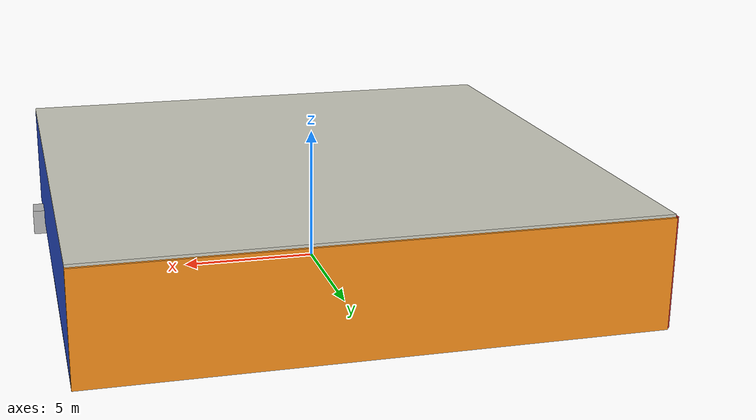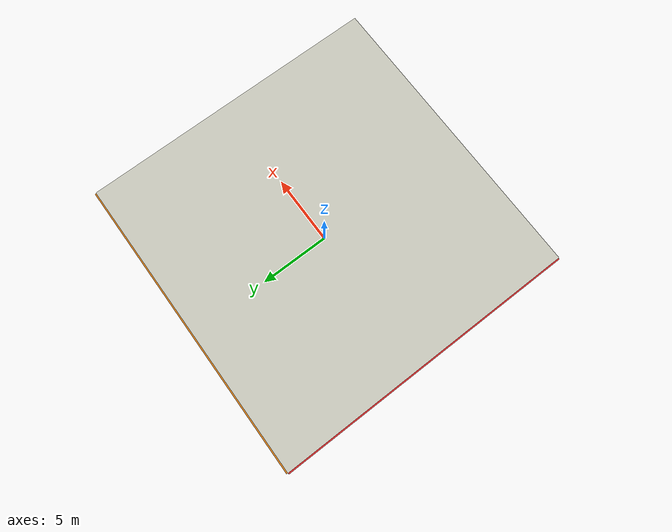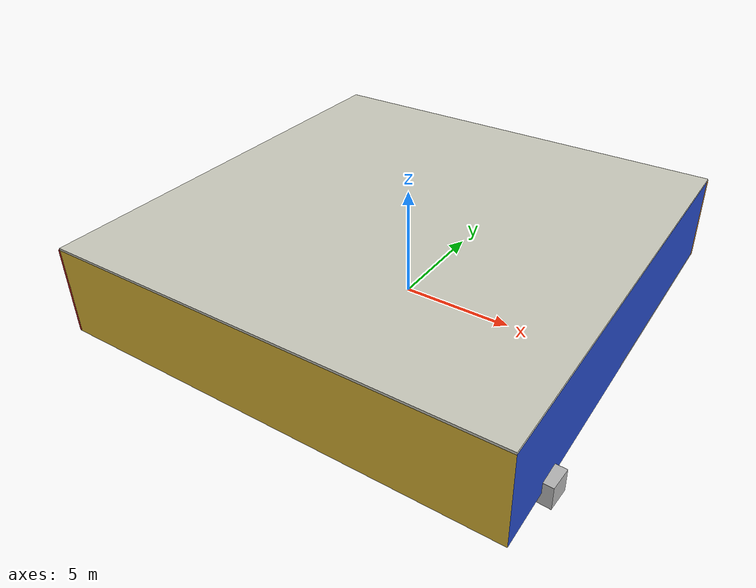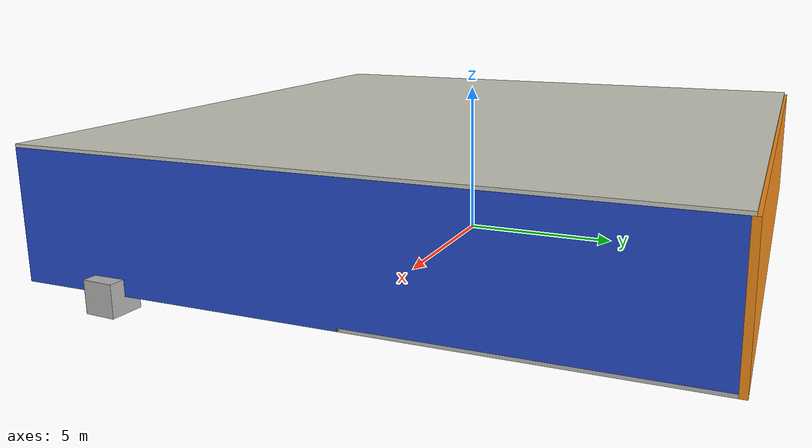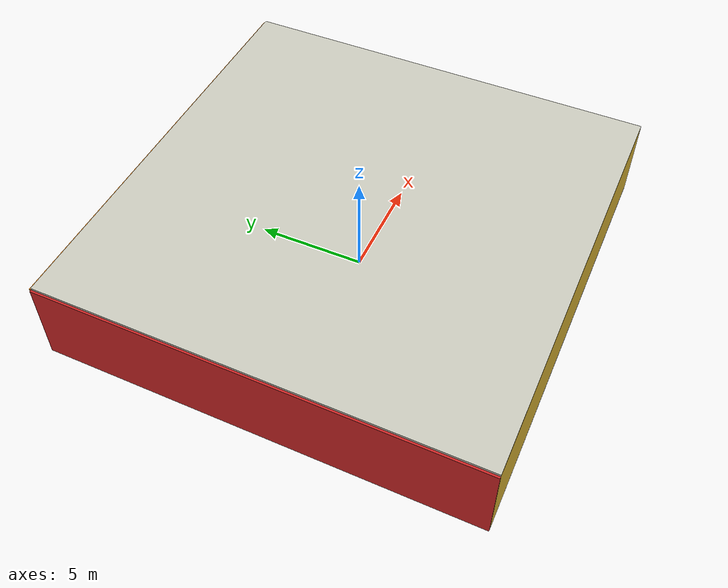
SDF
<sdf version="1.4">
 <world name="default">
  <physics type="ode">
   <max_step_size>0.001</max_step_size>
   <real_time_factor>1</real_time_factor>
   <real_time_update_rate>1000</real_time_update_rate>
   <gravity>0 0 -9.8</gravity>
  </physics>
  <scene><ambient>0.4 0.4 0.4 1</ambient><background>0.7 0.7 0.7 1</background><shadows>1</shadows></scene>
  <model name="Surrounding">
   <static>1</static>
   <link name="Ceiling">
    <collision name="Ceiling_Collision"><geometry><box><size>20 20 0.1</size></box></geometry></collision>
    <visual name="Ceiling_Visual">
     <geometry><box><size>20 20 0.1</size></box></geometry>
     <material>
      <script><uri>file://media/materials/scripts/gazebo.material</uri><name>Gazebo/PaintedWall</name></script>
     </material>
    </visual>
    <pose>0 0 4.05 0 0 0</pose>
   </link>
   <link name="Wall_South">
    <collision name="Wall_South_Collision">
     <geometry><box><size>20 0 4</size></box></geometry>
     <pose>0 0 2 0 -0 0</pose>
    </collision>
    <visual name="Wall_South_Visual">
     <pose>0 0 2 0 -0 0</pose>
     <geometry><box><size>20 0 4</size></box></geometry>
     <material>
      <script><uri>file://media/materials/scripts/gazebo.material</uri><name>Gazebo/Gold</name></script>
     </material>
    </visual>
    <velocity_decay><linear>0</linear><angular>0</angular></velocity_decay>
    <pose>0 -10 0 0 -0 0</pose>
   </link>
   <link name="Wall_East">
    <collision name="Wall_21_Collision">
     <geometry><box><size>20 0 4</size></box></geometry>
     <pose>0 0 2 0 -0 0</pose>
    </collision>
    <visual name="Wall_21_Visual">
     <pose>0 0 2 0 -0 0</pose>
     <geometry><box><size>20 0 4</size></box></geometry>
     <material>
      <script><uri>file://media/materials/scripts/gazebo.material</uri><name>Gazebo/BlueGlow</name></script>
     </material>
    </visual>
    <velocity_decay><linear>0</linear><angular>0</angular></velocity_decay>
    <pose>10 0 0 0 -0 1.5708</pose>
   </link>
   <link name="Wall_North">
    <collision name="Wall_22_Collision">
     <geometry><box><size>20 0.2 4</size></box></geometry>
     <pose>0 0 2 0 -0 0</pose>
    </collision>
    <visual name="Wall_22_Visual">
     <pose>0 0 2 0 -0 0</pose>
     <geometry><box><size>20 0.2 4</size></box></geometry>
     <material>
      <script><uri>file://media/materials/scripts/gazebo.material</uri><name>Gazebo/Orange</name></script>
     </material>
    </visual>
    <velocity_decay><linear>0</linear><angular>0</angular></velocity_decay>
    <pose>0 10 0 0 -0 0</pose>
   </link>
   <link name="Wall_West">
    <collision name="Wall_23_Collision">
     <geometry><box><size>20 0.2 4</size></box></geometry>
     <pose>0 0 2 0 -0 0</pose>
    </collision>
    <visual name="Wall_23_Visual">
     <pose>0 0 2 0 -0 0</pose>
     <geometry><box><size>20 0.2 4</size></box></geometry>
     <material>
      <script><uri>file://media/materials/scripts/gazebo.material</uri><name>Gazebo/RedGlow</name></script>
     </material>
    </visual>
    <velocity_decay><linear>0</linear><angular>0</angular></velocity_decay>
    <pose>-10 0 0 0 0 -1.5708</pose>
   </link>
   <link name="Ground_link">
    <collision name="collision">
     <pose>0 0 .05 0 -0 0</pose>
     <geometry><box><size>20 20 0.1</size></box></geometry>
    </collision>
    <visual name="visual">
     <pose>0 0 .05 0 -0 0</pose>
     <geometry><box><size>20 20 0.1</size></box></geometry>
     <material>
      <script><uri>file://media/materials/scripts/gazebo.material</uri><name>Gazebo/JointAnchor</name></script>
     </material>
    </visual>
   </link>
   <static>1</static>
  </model>
  <spherical_coordinates>
   <surface_model>EARTH_WGS84</surface_model>
   <latitude_deg>0</latitude_deg>
   <longitude_deg>0</longitude_deg>
   <elevation>0</elevation>
   <heading_deg>0</heading_deg>
  </spherical_coordinates>
  <light name="lightball_0" type="diffuse">
   <diffuse>0.8 0.8 0.8 1</diffuse>
   <specular>0.2 0.2 0.2 1</specular>
   <attenuation>
    <range>100</range>
    <constant>0.7</constant>
    <linear>0.01</linear>
    <quadratic>0.001</quadratic>
   </attenuation>
   <direction>-0.5 0.1 -0.9</direction>
   <pose>1.03348430954 2.78523410256 1.39895100223 0 0 0</pose>
  </light>
  <light name="lightball_1" type="diffuse">
   <diffuse>0.8 0.8 0.8 1</diffuse>
   <specular>0.2 0.2 0.2 1</specular>
   <attenuation>
    <range>100</range>
    <constant>0.7</constant>
    <linear>0.01</linear>
    <quadratic>0.001</quadratic>
   </attenuation>
   <direction>-0.5 0.1 -0.9</direction>
   <pose>7.70993389005 -3.16326727703 2.1457099186 0 0 0</pose>
  </light>
  <light name="lightball_2" type="diffuse">
   <diffuse>0.8 0.8 0.8 1</diffuse>
   <specular>0.2 0.2 0.2 1</specular>
   <attenuation>
    <range>100</range>
    <constant>0.7</constant>
    <linear>0.01</linear>
    <quadratic>0.001</quadratic>
   </attenuation>
   <direction>-0.5 0.1 -0.9</direction>
   <pose>-8.47281842659 3.39139171376 1.51563473071 0 0 0</pose>
  </light>
  <light name="lightball_3" type="diffuse">
   <diffuse>0.8 0.8 0.8 1</diffuse>
   <specular>0.2 0.2 0.2 1</specular>
   <attenuation>
    <range>100</range>
    <constant>0.7</constant>
    <linear>0.01</linear>
    <quadratic>0.001</quadratic>
   </attenuation>
   <direction>-0.5 0.1 -0.9</direction>
   <pose>0.771644353054 -1.84809990989 2.29668446586 0 0 0</pose>
  </light>
  <light name="lightball_4" type="diffuse">
   <diffuse>0.8 0.8 0.8 1</diffuse>
   <specular>0.2 0.2 0.2 1</specular>
   <attenuation>
    <range>100</range>
    <constant>0.7</constant>
    <linear>0.01</linear>
    <quadratic>0.001</quadratic>
   </attenuation>
   <direction>-0.5 0.1 -0.9</direction>
   <pose>-3.76448205719 3.72162358256 3.2260862828 0 0 0</pose>
  </light>
  <light name="lightball_5" type="diffuse">
   <diffuse>0.8 0.8 0.8 1</diffuse>
   <specular>0.2 0.2 0.2 1</specular>
   <attenuation>
    <range>100</range>
    <constant>0.7</constant>
    <linear>0.01</linear>
    <quadratic>0.001</quadratic>
   </attenuation>
   <direction>-0.5 0.1 -0.9</direction>
   <pose>-8.48741890342 8.5370961881 3.68720898653 0 0 0</pose>
  </light>
  <include>
   <uri>model://construction_cone</uri>
   <pose>-8.12826276114 5.05698080286 0 0 0 2.48770470903</pose>
  </include>
  <include><uri>model://cabinet</uri><pose>-5.4448426415 -4.8511756835 0 0 0 1.70292517314</pose></include>
  <include><uri>model://cabinet</uri><pose>-1.50264456305 3.73791171316 0 0 0 0.725541555953</pose></include>
  <include><uri>model://cabinet</uri><pose>0.614558357283 -3.85129879829 0 0 0 1.3819626111</pose></include>
  <include><uri>model://cabinet</uri><pose>3.39687502175 -3.37223822941 0 0 0 0.911702672651</pose></include>
  <include>
   <uri>model://textured_shapes</uri>
   <pose>5.35018346146 -2.17470407986 0 0 0 2.49235773065</pose>
  </include>
  <include>
   <uri>model://textured_shapes</uri>
   <pose>8.44575131708 -6.9287620518 0 0 0 1.51492885906</pose>
  </include>
 </world>
</sdf>

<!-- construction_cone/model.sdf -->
<sdf version="1.5">
  <model name="Construction Cone">
    <link name="link">
      <collision name="collision">
        <geometry>
          <mesh>
            <scale>10 10 10</scale>
            <uri>file://isr-testbed/construction_cone/meshes/construction_cone.dae</uri>
          </mesh>
        </geometry>
      </collision>
      <visual name="visual">
        <geometry>
          <mesh>
            <scale>10 10 10</scale>
            <uri>file://isr-testbed/construction_cone/meshes/construction_cone.dae</uri>
          </mesh>
        </geometry>
      </visual>
    </link>
  </model>
</sdf>

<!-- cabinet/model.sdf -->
<sdf version="1.5">
  <model name="cabinet">
    <static>true</static>
    <link name="cabinet_bottom_plate">
      <inertial>
        <pose>0 0 -1 0 0 0</pose>
        <inertia>
          <ixx>2.050000</ixx>
          <ixy>0</ixy>
          <ixz>0</ixz>
          <iyy>2.050000</iyy>
          <iyz>0</iyz>
          <izz>2.050000</izz>
        </inertia>
        <mass>25.000000</mass>
      </inertial>
      <collision name="cabinet_bottom_plate_geom">
        <pose>0 0 0.010000 0 0 0</pose>
        <geometry>
          <box>
            <size>0.450000 0.450000 0.020000</size>
          </box>
        </geometry>
      </collision>
      <visual name="cabinet_bottom_plate_geom_visual">
        <pose>0 0 0.010000 0 0 0</pose>
        <geometry>
          <box>
            <size>0.450000 0.450000 0.020000</size>
          </box>
        </geometry>
        <material>
          <script>
            <uri>model://media/materials/scripts/gazebo.material</uri>
            <name>Gazebo/Wood</name>
          </script>
        </material>
      </visual>
      <collision name="cabinet_bottom_plate_geom_cabinet_back_plate">
        <pose>0.235000 0 0.510000 0 0 0</pose>
        <geometry>
          <box>
            <size>0.020000 0.450000 1.020000</size>
          </box>
        </geometry>
      </collision>
      <visual name="cabinet_bottom_plate_geom_cabinet_back_plate_visual">
        <pose>0.235000 0 0.510000 0 0 0</pose>
        <geometry>
          <box>
            <size>0.020000 0.450000 1.020000</size>
          </box>
        </geometry>
        <material>
          <script>
            <uri>model://media/materials/scripts/gazebo.material</uri>
            <name>Gazebo/Wood</name>
          </script>
        </material>
      </visual>
      <collision name="cabinet_bottom_plate_geom_cabinet_left_plate">
        <pose>0 0.235000 0.510000 0 0 0</pose>
        <geometry>
          <box>
            <size>0.450000 0.020000 1.020000</size>
          </box>
        </geometry>
      </collision>
      <visual name="cabinet_bottom_plate_geom_cabinet_left_plate_visual">
        <pose>0 0.235000 0.510000 0 0 0</pose>
        <geometry>
          <box>
            <size>0.450000 0.020000 1.020000</size>
          </box>
        </geometry>
        <material>
          <script>
            <uri>model://media/materials/scripts/gazebo.material</uri>
            <name>Gazebo/Wood</name>
          </script>
        </material>
      </visual>
      <collision name="cabinet_bottom_plate_geom_cabinet_middle_plate">
        <pose>0 0 0.510000 0 0 0</pose>
        <geometry>
          <box>
            <size>0.450000 0.450000 0.020000</size>
          </box>
        </geometry>
      </collision>
      <visual name="cabinet_bottom_plate_geom_cabinet_middle_plate_visual">
        <pose>0 0 0.510000 0 0 0</pose>
        <geometry>
          <box>
            <size>0.450000 0.450000 0.020000</size>
          </box>
        </geometry>
        <material>
          <script>
            <uri>model://media/materials/scripts/gazebo.material</uri>
            <name>Gazebo/Wood</name>
          </script>
        </material>
      </visual>
      <collision name="cabinet_bottom_plate_geom_cabinet_right_plate">
        <pose>0 -0.235000 0.510000 0 0 0</pose>
        <geometry>
          <box>
            <size>0.450000 0.020000 1.020000</size>
          </box>
        </geometry>
      </collision>
      <visual name="cabinet_bottom_plate_geom_cabinet_right_plate_visual">
        <pose>0 -0.235000 0.510000 0 0 0</pose>
        <geometry>
          <box>
            <size>0.450000 0.020000 1.020000</size>
          </box>
        </geometry>
        <material>
          <script>
            <uri>model://media/materials/scripts/gazebo.material</uri>
            <name>Gazebo/Wood</name>
          </script>
        </material>
      </visual>
      <collision name="cabinet_bottom_plate_geom_cabinet_top_plate">
        <pose>0 0 1.010000 0 0 0</pose>
        <geometry>
          <box>
            <size>0.450000 0.450000 0.020000</size>
          </box>
        </geometry>
      </collision>
      <visual name="cabinet_bottom_plate_geom_cabinet_top_plate_visual">
        <pose>0 0 1.010000 0 0 0</pose>
        <geometry>
          <box>
            <size>0.450000 0.450000 0.020000</size>
          </box>
        </geometry>
        <material>
          <script>
            <uri>model://media/materials/scripts/gazebo.material</uri>
            <name>Gazebo/Wood</name>
          </script>
        </material>
      </visual>
    </link>
  </model>
</sdf>

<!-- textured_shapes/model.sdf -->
<sdf version="1.6">
  <model name="textured_shapes">
    <pose>0 0 0.5 0 0 0</pose>
    <link name="box">
      <pose>0 -1.5 0 0 0 0</pose>
      <collision name="collision">
        <geometry>
          <box>
            <size>1 1 1</size>
          </box>
        </geometry>
      </collision>
      <visual name="visual">
        <geometry>
          <box>
            <size>1 1 1</size>
          </box>
        </geometry>
        <material>
          <script>
            <uri>model://../model_source/models/textured_shapes/materials/scripts</uri>
            <uri>model://../model_source/models/textured_shapes/materials/textures</uri>
            <name>TexturedShape/Squares</name>
          </script>
        </material>
      </visual>
    </link>
    <link name="sphere">
      <collision name="collision">
        <geometry>
          <sphere>
            <radius>0.5</radius>
          </sphere>
        </geometry>
      </collision>
      <visual name="visual">
        <geometry>
          <sphere>
            <radius>0.5</radius>
          </sphere>
        </geometry>
        <material>
          <script>
            <uri>model://../model_source/models/textured_shapes/materials/scripts</uri>
            <uri>model://../model_source/models/textured_shapes/materials/textures</uri>
            <name>TexturedShape/Squares</name>
          </script>
        </material>
      </visual>
    </link>
    <link name="cylinder">
      <pose>0 1.5 0 0 0 0</pose>
      <collision name="collision">
        <geometry>
          <cylinder>
            <radius>0.5</radius>
            <length>1</length>
          </cylinder>
        </geometry>
      </collision>
      <visual name="visual">
        <geometry>
          <cylinder>
            <radius>0.5</radius>
            <length>1</length>
          </cylinder>
        </geometry>
        <material>
          <script>
            <uri>model://../model_source/models/textured_shapes/materials/scripts</uri>
            <uri>model://../model_source/models/textured_shapes/materials/textures</uri>
            <name>TexturedShape/Squares</name>
          </script>
        </material>
      </visual>
    </link>
  </model>
</sdf>
